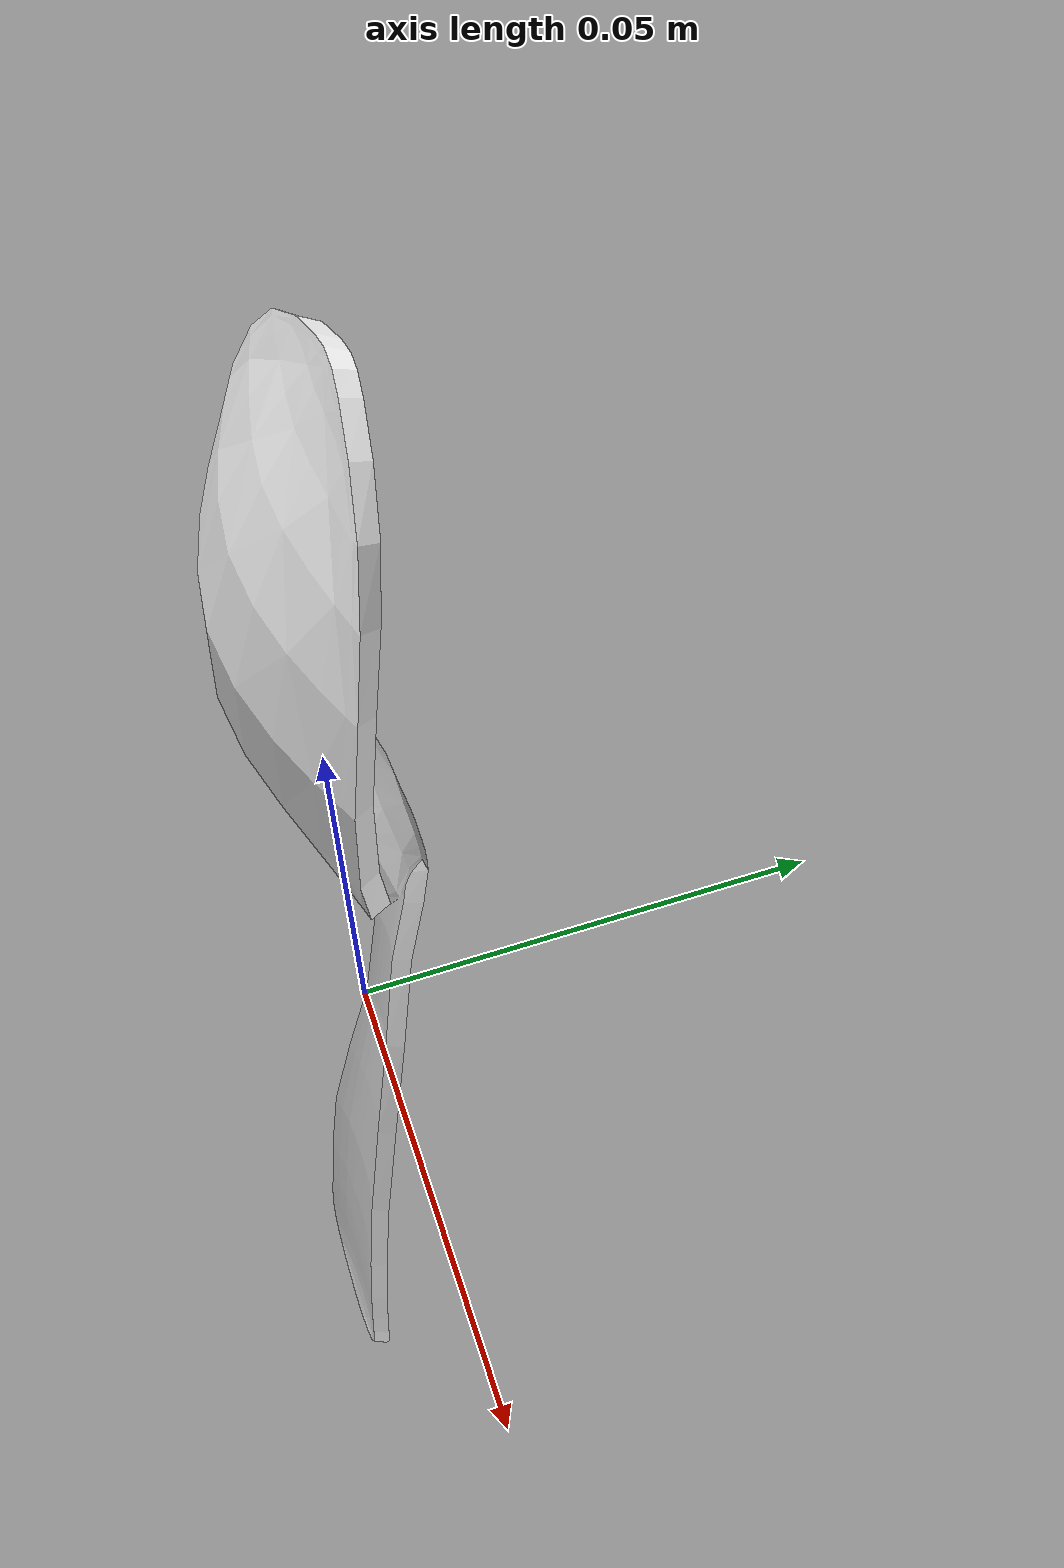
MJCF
<mujoco model="Spoon_1">
  <default>
    <default class="visual">
      <geom group="2" type="mesh" contype="0" conaffinity="0"/>
    </default>
    <default class="collision">
      <geom group="3" type="mesh"/>
    </default>
  </default>
  <asset>
    <material name="BrushedAluminum_AlbedoTransparency" specular="0.5" shininess="0.5" rgba="1 1 1 1.0"/>
    <mesh file="Spoon_1.obj"/>
    <mesh file="Spoon_1_collision_0.obj"/>
    <mesh file="Spoon_1_collision_1.obj"/>
    <mesh file="Spoon_1_collision_2.obj"/>
    <mesh file="Spoon_1_collision_3.obj"/>
    <mesh file="Spoon_1_collision_4.obj"/>
    <mesh file="Spoon_1_collision_5.obj"/>
    <mesh file="Spoon_1_collision_6.obj"/>
  </asset>
  <worldbody>
    <body name="Spoon_1">
      <geom material="BrushedAluminum_AlbedoTransparency" mesh="Spoon_1" class="visual"/>
      <geom mesh="Spoon_1_collision_0" rgba="0.19777711191177116 0.3343603346096715 0.5044218000461733 1" class="collision"/>
      <geom mesh="Spoon_1_collision_1" rgba="0.8995773752543484 0.20815663148341002 0.9386844232127693 1" class="collision"/>
      <geom mesh="Spoon_1_collision_2" rgba="0.8588613721116437 0.4427789865201689 0.15503119546696487 1" class="collision"/>
      <geom mesh="Spoon_1_collision_3" rgba="0.3423988348405489 0.16947793048952586 0.44521953503832157 1" class="collision"/>
      <geom mesh="Spoon_1_collision_4" rgba="0.6793869954181623 0.09548611045033983 0.4385446435374222 1" class="collision"/>
      <geom mesh="Spoon_1_collision_5" rgba="0.26744835795603705 0.0037412458614628497 0.44101287409845746 1" class="collision"/>
      <geom mesh="Spoon_1_collision_6" rgba="0.06297551584568739 0.1497274572157956 0.4724871927884947 1" class="collision"/>
    </body>
  </worldbody>
</mujoco>
